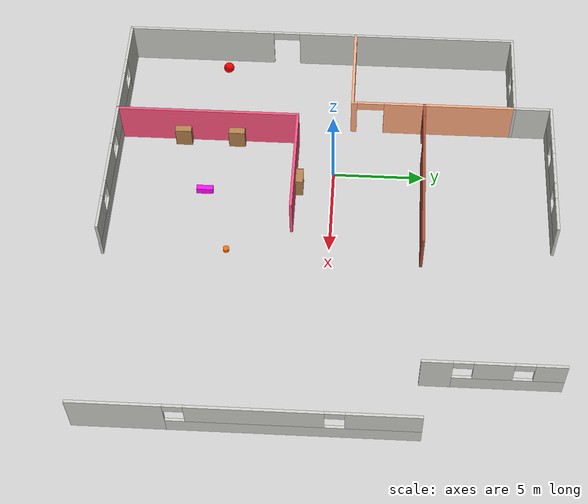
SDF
<sdf version="1.6">
 <world name="default">
  <model name="ground_plane">
   <static>1</static>
   <link name="link">
    <collision name="collision">
     <geometry><plane><normal>0 0 1</normal><size>100 100</size></plane></geometry>
     <surface><friction><ode><mu>100</mu><mu2>50</mu2></ode></friction></surface>
    </collision>
    <visual name="visual">
     <cast_shadows>0</cast_shadows>
     <geometry><plane><normal>0 0 1</normal><size>100 100</size></plane></geometry>
     <material>
      <script><uri>file://media/materials/scripts/gazebo.material</uri><name>Gazebo/Grey</name></script>
     </material>
    </visual>
   </link>
  </model>
  <model name="myWorld">
   <pose>3.77608 -0.0788 0 0 -0 0</pose>
   <link name="Wall_0">
    <pose>0 -12 0 0 -0 0</pose>
    <visual name="Wall_0_Visual_0">
     <pose>-10.7875 0 1.25 0 -0 0</pose>
     <geometry><box><size>2.575 0.15 2.5</size></box></geometry>
     <material>
      <script><uri>file://media/materials/scripts/gazebo.material</uri><name>Gazebo/CeilingTiled</name></script>
      <ambient>1 0.764706 0.305882 1</ambient>
     </material>
     <meta><layer>0</layer></meta>
    </visual>
    <collision name="Wall_0_Collision_0">
     <geometry><box><size>2.575 0.15 2.5</size></box></geometry>
     <pose>-10.7875 0 1.25 0 -0 0</pose>
    </collision>
    <visual name="Wall_0_Visual_1">
     <pose>-3.75 0 0.5 0 -0 0</pose>
     <geometry><box><size>11.575 0.15 1</size></box></geometry>
     <material>
      <script><uri>file://media/materials/scripts/gazebo.material</uri><name>Gazebo/CeilingTiled</name></script>
      <ambient>1 0.764706 0.305882 1</ambient>
     </material>
     <meta><layer>0</layer></meta>
    </visual>
    <collision name="Wall_0_Collision_1">
     <geometry><box><size>11.575 0.15 1</size></box></geometry>
     <pose>-3.75 0 0.5 0 -0 0</pose>
    </collision>
    <visual name="Wall_0_Visual_2">
     <pose>-6.5 0 1.75 0 -0 0</pose>
     <geometry><box><size>4 0.15 1.5</size></box></geometry>
     <material>
      <script><uri>file://media/materials/scripts/gazebo.material</uri><name>Gazebo/CeilingTiled</name></script>
      <ambient>1 0.764706 0.305882 1</ambient>
     </material>
     <meta><layer>0</layer></meta>
    </visual>
    <collision name="Wall_0_Collision_2">
     <geometry><box><size>4 0.15 1.5</size></box></geometry>
     <pose>-6.5 0 1.75 0 -0 0</pose>
    </collision>
    <visual name="Wall_0_Visual_3">
     <pose>-2.25 0 1.75 0 -0 0</pose>
     <geometry><box><size>2.5 0.15 1.5</size></box></geometry>
     <material>
      <script><uri>file://media/materials/scripts/gazebo.material</uri><name>Gazebo/CeilingTiled</name></script>
      <ambient>1 0.764706 0.305882 1</ambient>
     </material>
     <meta><layer>0</layer></meta>
    </visual>
    <collision name="Wall_0_Collision_3">
     <geometry><box><size>2.5 0.15 1.5</size></box></geometry>
     <pose>-2.25 0 1.75 0 -0 0</pose>
    </collision>
    <visual name="Wall_0_Visual_4">
     <pose>1 0 1.75 0 -0 0</pose>
     <geometry><box><size>2 0.15 1.5</size></box></geometry>
     <material>
      <script><uri>file://media/materials/scripts/gazebo.material</uri><name>Gazebo/CeilingTiled</name></script>
      <ambient>1 0.764706 0.305882 1</ambient>
     </material>
     <meta><layer>0</layer></meta>
    </visual>
    <collision name="Wall_0_Collision_4">
     <geometry><box><size>2 0.15 1.5</size></box></geometry>
     <pose>1 0 1.75 0 -0 0</pose>
    </collision>
    <visual name="Wall_0_Visual_7">
     <pose>-9 0 2.25 0 -0 0</pose>
     <geometry><box><size>1 0.15 0.5</size></box></geometry>
     <material>
      <script><uri>file://media/materials/scripts/gazebo.material</uri><name>Gazebo/CeilingTiled</name></script>
      <ambient>1 0.764706 0.305882 1</ambient>
     </material>
     <meta><layer>0</layer></meta>
    </visual>
    <collision name="Wall_0_Collision_7">
     <geometry><box><size>1 0.15 0.5</size></box></geometry>
     <pose>-9 0 2.25 0 -0 0</pose>
    </collision>
    <visual name="Wall_0_Visual_8">
     <pose>-4 0 2.25 0 -0 0</pose>
     <geometry><box><size>1 0.15 0.5</size></box></geometry>
     <material>
      <script><uri>file://media/materials/scripts/gazebo.material</uri><name>Gazebo/CeilingTiled</name></script>
      <ambient>1 0.764706 0.305882 1</ambient>
     </material>
     <meta><layer>0</layer></meta>
    </visual>
    <collision name="Wall_0_Collision_8">
     <geometry><box><size>1 0.15 0.5</size></box></geometry>
     <pose>-4 0 2.25 0 -0 0</pose>
    </collision>
    <visual name="Wall_0_Visual_9">
     <pose>-0.5 0 2.25 0 -0 0</pose>
     <geometry><box><size>1 0.15 0.5</size></box></geometry>
     <material>
      <script><uri>file://media/materials/scripts/gazebo.material</uri><name>Gazebo/CeilingTiled</name></script>
      <ambient>1 0.764706 0.305882 1</ambient>
     </material>
     <meta><layer>0</layer></meta>
    </visual>
    <collision name="Wall_0_Collision_9">
     <geometry><box><size>1 0.15 0.5</size></box></geometry>
     <pose>-0.5 0 2.25 0 -0 0</pose>
    </collision>
   </link>
   <link name="Wall_10">
    <collision name="Wall_10_Collision">
     <geometry><box><size>10.15 0.15 2.5</size></box></geometry>
     <pose>0 0 1.25 0 -0 0</pose>
    </collision>
    <visual name="Wall_10_Visual">
     <pose>0 0 1.25 0 -0 0</pose>
     <geometry><box><size>10.15 0.15 2.5</size></box></geometry>
     <material>
      <script><uri>file://media/materials/scripts/gazebo.material</uri><name>Gazebo/Grey</name></script>
      <ambient>1 0.333333 0.498039 1</ambient>
     </material>
     <meta><layer>0</layer></meta>
    </visual>
    <pose>-6 -7 0 0 -0 1.5708</pose>
   </link>
   <link name="Wall_14">
    <collision name="Wall_14_Collision">
     <geometry><box><size>6.15 0.15 2.5</size></box></geometry>
     <pose>1.1 0 1.25 0 -0 0</pose>
    </collision>
    <visual name="Wall_14_Visual">
     <pose>1.1 0 1.25 0 -0 0</pose>
     <geometry><box><size>6.15 0.15 2.5</size></box></geometry>
     <material>
      <script><uri>file://media/materials/scripts/gazebo.material</uri><name>Gazebo/Grey</name></script>
      <ambient>1 0.333333 0.498039 1</ambient>
     </material>
     <meta><layer>0</layer></meta>
    </visual>
    <pose>-4 -2 0 0 -0 0</pose>
   </link>
   <link name="Wall_2">
    <pose>12 -3.5 0 0 -0 1.5708</pose>
    <visual name="Wall_2_Visual_0">
     <pose>-6.2125 0 1.25 0 -0 0</pose>
     <geometry><box><size>4.7125 0.15 2.5</size></box></geometry>
     <material>
      <script><uri>file://media/materials/scripts/gazebo.material</uri><name>Gazebo/CeilingTiled</name></script>
      <ambient>1 0.764706 0.305882 1</ambient>
     </material>
     <meta><layer>0</layer></meta>
    </visual>
    <collision name="Wall_2_Collision_0">
     <geometry><box><size>4.7125 0.15 2.5</size></box></geometry>
     <pose>-6.2125 0 1.25 0 -0 0</pose>
    </collision>
    <visual name="Wall_2_Visual_1">
     <pose>2.35 0 0.5 0 -0 0</pose>
     <geometry><box><size>12.46 0.15 1</size></box></geometry>
     <material>
      <script><uri>file://media/materials/scripts/gazebo.material</uri><name>Gazebo/CeilingTiled</name></script>
      <ambient>1 0.764706 0.305882 1</ambient>
     </material>
     <meta><layer>0</layer></meta>
    </visual>
    <collision name="Wall_2_Collision_1">
     <geometry><box><size>12.46 0.15 1</size></box></geometry>
     <pose>2.35 0 0.5 0 -0 0</pose>
    </collision>
    <visual name="Wall_2_Visual_2">
     <pose>0.5 0 1.75 0 -0 0</pose>
     <geometry><box><size>6.75 0.15 1.5</size></box></geometry>
     <material>
      <script><uri>file://media/materials/scripts/gazebo.material</uri><name>Gazebo/CeilingTiled</name></script>
      <ambient>1 0.764706 0.305882 1</ambient>
     </material>
     <meta><layer>0</layer></meta>
    </visual>
    <collision name="Wall_2_Collision_2">
     <geometry><box><size>6.75 0.15 1.5</size></box></geometry>
     <pose>0.5 0 1.75 0 -0 0</pose>
    </collision>
    <visual name="Wall_2_Visual_3">
     <pose>6.7125 0 1.75 0 -0 0</pose>
     <geometry><box><size>3.725 0.15 1.5</size></box></geometry>
     <material>
      <script><uri>file://media/materials/scripts/gazebo.material</uri><name>Gazebo/CeilingTiled</name></script>
      <ambient>1 0.764706 0.305882 1</ambient>
     </material>
     <meta><layer>0</layer></meta>
    </visual>
    <collision name="Wall_2_Collision_3">
     <geometry><box><size>3.725 0.15 1.5</size></box></geometry>
     <pose>6.7125 0 1.75 0 -0 0</pose>
    </collision>
    <visual name="Wall_2_Visual_4">
     <pose>-3.375 0 2.25 0 -0 0</pose>
     <geometry><box><size>1 0.15 0.5</size></box></geometry>
     <material>
      <script><uri>file://media/materials/scripts/gazebo.material</uri><name>Gazebo/CeilingTiled</name></script>
      <ambient>1 0.764706 0.305882 1</ambient>
     </material>
     <meta><layer>0</layer></meta>
    </visual>
    <collision name="Wall_2_Collision_4">
     <geometry><box><size>1 0.15 0.5</size></box></geometry>
     <pose>-3.375 0 2.25 0 -0 0</pose>
    </collision>
    <visual name="Wall_2_Visual_5">
     <pose>4.375 0 2.25 0 -0 0</pose>
     <geometry><box><size>1 0.15 0.5</size></box></geometry>
     <material>
      <script><uri>file://media/materials/scripts/gazebo.material</uri><name>Gazebo/CeilingTiled</name></script>
      <ambient>1 0.764706 0.305882 1</ambient>
     </material>
     <meta><layer>0</layer></meta>
    </visual>
    <collision name="Wall_2_Collision_5">
     <geometry><box><size>1 0.15 0.5</size></box></geometry>
     <pose>4.375 0 2.25 0 -0 0</pose>
    </collision>
   </link>
   <link name="Wall_24">
    <collision name="Wall_24_Collision">
     <geometry><box><size>5.15 0.15 2.5</size></box></geometry>
     <pose>0 0 1.25 0 -0 0</pose>
    </collision>
    <visual name="Wall_24_Visual">
     <pose>0 0 1.25 0 -0 0</pose>
     <geometry><box><size>5.15 0.15 2.5</size></box></geometry>
     <material>
      <script><uri>file://media/materials/scripts/gazebo.material</uri><name>Gazebo/Grey</name></script>
      <ambient>1 0.666667 0.498039 1</ambient>
     </material>
     <meta><layer>0</layer></meta>
    </visual>
    <pose>-9.5 1 0 0 -0 0</pose>
   </link>
   <link name="Wall_25">
    <pose>-7 5.5 0 0 -0 1.5708</pose>
    <visual name="Wall_25_Visual_0">
     <pose>-4.4125 0 1.25 0 -0 0</pose>
     <geometry><box><size>0.325 0.15 2.5</size></box></geometry>
     <material>
      <script><uri>file://media/materials/scripts/gazebo.material</uri><name>Gazebo/Grey</name></script>
      <ambient>1 0.666667 0.498039 1</ambient>
     </material>
     <meta><layer>0</layer></meta>
    </visual>
    <collision name="Wall_25_Collision_0">
     <geometry><box><size>0.325 0.15 2.5</size></box></geometry>
     <pose>-4.4125 0 1.25 0 -0 0</pose>
    </collision>
    <visual name="Wall_25_Visual_1">
     <pose>0.9125 0 1.25 0 -0 0</pose>
     <geometry><box><size>7.325 0.15 2.5</size></box></geometry>
     <material>
      <script><uri>file://media/materials/scripts/gazebo.material</uri><name>Gazebo/Grey</name></script>
      <ambient>1 0.666667 0.498039 1</ambient>
     </material>
     <meta><layer>0</layer></meta>
    </visual>
    <collision name="Wall_25_Collision_1">
     <geometry><box><size>7.325 0.15 2.5</size></box></geometry>
     <pose>0.9125 0 1.25 0 -0 0</pose>
    </collision>
    <visual name="Wall_25_Visual_2">
     <pose>-3.5 0 2.25 0 -0 0</pose>
     <geometry><box><size>1.5 0.15 0.5</size></box></geometry>
     <material>
      <script><uri>file://media/materials/scripts/gazebo.material</uri><name>Gazebo/Grey</name></script>
      <ambient>1 0.666667 0.498039 1</ambient>
     </material>
     <meta><layer>0</layer></meta>
    </visual>
    <collision name="Wall_25_Collision_2">
     <geometry><box><size>1.5 0.15 0.5</size></box></geometry>
     <pose>-3.5 0 2.25 0 -0 0</pose>
    </collision>
   </link>
   <link name="Wall_27">
    <pose>1 5 0 0 -0 0</pose>
    <visual name="Wall_27_Visual_0">
     <pose>-7.6625 0 1.25 0 -0 0</pose>
     <geometry><box><size>0.825 0.15 2.5</size></box></geometry>
     <material>
      <script><uri>file://media/materials/scripts/gazebo.material</uri><name>Gazebo/Bricks</name></script>
      <ambient>1 0.5 0.498039 1</ambient>
     </material>
     <meta><layer>0</layer></meta>
    </visual>
    <collision name="Wall_27_Collision_0">
     <geometry><box><size>0.825 0.15 2.5</size></box></geometry>
     <pose>-7.6625 0 1.25 0 -0 0</pose>
    </collision>
    <visual name="Wall_27_Visual_1">
     <pose>-2.375 0 1.25 0 -0 0</pose>
     <geometry><box><size>6.875 0.15 2.5</size></box></geometry>
     <material>
      <script><uri>file://media/materials/scripts/gazebo.material</uri><name>Gazebo/Bricks</name></script>
      <ambient>1 0.5 0.498039 1</ambient>
     </material>
     <meta><layer>0</layer></meta>
    </visual>
    <collision name="Wall_27_Collision_1">
     <geometry><box><size>6.875 0.15 2.5</size></box></geometry>
     <pose>-2.375 0 1.25 0 -0 0</pose>
    </collision>
    <visual name="Wall_27_Visual_3">
     <pose>-6.5 0 2.25 0 -0 0</pose>
     <geometry><box><size>1.5 0.15 0.5</size></box></geometry>
     <material>
      <script><uri>file://media/materials/scripts/gazebo.material</uri><name>Gazebo/Bricks</name></script>
      <ambient>1 0.5 0.498039 1</ambient>
     </material>
     <meta><layer>0</layer></meta>
    </visual>
    <collision name="Wall_27_Collision_3">
     <geometry><box><size>1.5 0.15 0.5</size></box></geometry>
     <pose>-6.5 0 2.25 0 -0 0</pose>
    </collision>
   </link>
   <link name="Wall_4">
    <pose>9 8.5 0 0 -0 1.5708</pose>
    <visual name="Wall_4_Visual_0">
     <pose>-2.7875 0 1.25 0 -0 0</pose>
     <geometry><box><size>1.575 0.15 2.5</size></box></geometry>
     <material>
      <script><uri>file://media/materials/scripts/gazebo.material</uri><name>Gazebo/CeilingTiled</name></script>
      <ambient>1 0.764706 0.305882 1</ambient>
     </material>
     <meta><layer>0</layer></meta>
    </visual>
    <collision name="Wall_4_Collision_0">
     <geometry><box><size>1.575 0.15 2.5</size></box></geometry>
     <pose>-2.7875 0 1.25 0 -0 0</pose>
    </collision>
    <visual name="Wall_4_Visual_1">
     <pose>0.7875 0 0.5 0 -0 0</pose>
     <geometry><box><size>5.575 0.15 1</size></box></geometry>
     <material>
      <script><uri>file://media/materials/scripts/gazebo.material</uri><name>Gazebo/CeilingTiled</name></script>
      <ambient>1 0.764706 0.305882 1</ambient>
     </material>
     <meta><layer>0</layer></meta>
    </visual>
    <collision name="Wall_4_Collision_1">
     <geometry><box><size>5.575 0.15 1</size></box></geometry>
     <pose>0.7875 0 0.5 0 -0 0</pose>
    </collision>
    <visual name="Wall_4_Visual_2">
     <pose>0 0 1.75 0 -0 0</pose>
     <geometry><box><size>2 0.15 1.5</size></box></geometry>
     <material>
      <script><uri>file://media/materials/scripts/gazebo.material</uri><name>Gazebo/CeilingTiled</name></script>
      <ambient>1 0.764706 0.305882 1</ambient>
     </material>
     <meta><layer>0</layer></meta>
    </visual>
    <collision name="Wall_4_Collision_2">
     <geometry><box><size>2 0.15 1.5</size></box></geometry>
     <pose>0 0 1.75 0 -0 0</pose>
    </collision>
    <visual name="Wall_4_Visual_3">
     <pose>2.7875 0 1.75 0 -0 0</pose>
     <geometry><box><size>1.575 0.15 1.5</size></box></geometry>
     <material>
      <script><uri>file://media/materials/scripts/gazebo.material</uri><name>Gazebo/CeilingTiled</name></script>
      <ambient>1 0.764706 0.305882 1</ambient>
     </material>
     <meta><layer>0</layer></meta>
    </visual>
    <collision name="Wall_4_Collision_3">
     <geometry><box><size>1.575 0.15 1.5</size></box></geometry>
     <pose>2.7875 0 1.75 0 -0 0</pose>
    </collision>
    <visual name="Wall_4_Visual_4">
     <pose>-1.5 0 2.25 0 -0 0</pose>
     <geometry><box><size>1 0.15 0.5</size></box></geometry>
     <material>
      <script><uri>file://media/materials/scripts/gazebo.material</uri><name>Gazebo/CeilingTiled</name></script>
      <ambient>1 0.764706 0.305882 1</ambient>
     </material>
     <meta><layer>0</layer></meta>
    </visual>
    <collision name="Wall_4_Collision_4">
     <geometry><box><size>1 0.15 0.5</size></box></geometry>
     <pose>-1.5 0 2.25 0 -0 0</pose>
    </collision>
    <visual name="Wall_4_Visual_5">
     <pose>1.5 0 2.25 0 -0 0</pose>
     <geometry><box><size>1 0.15 0.5</size></box></geometry>
     <material>
      <script><uri>file://media/materials/scripts/gazebo.material</uri><name>Gazebo/CeilingTiled</name></script>
      <ambient>1 0.764706 0.305882 1</ambient>
     </material>
     <meta><layer>0</layer></meta>
    </visual>
    <collision name="Wall_4_Collision_5">
     <geometry><box><size>1 0.15 0.5</size></box></geometry>
     <pose>1.5 0 2.25 0 -0 0</pose>
    </collision>
   </link>
   <link name="Wall_5">
    <pose>1 12 0 0 -0 3.14159</pose>
    <visual name="Wall_5_Visual_1">
     <pose>4.0375 0 0.5 0 -0 0</pose>
     <geometry><box><size>8.075 0.15 1</size></box></geometry>
     <material>
      <script><uri>file://media/materials/scripts/gazebo.material</uri><name>Gazebo/CeilingTiled</name></script>
      <ambient>1 0.764706 0.305882 1</ambient>
     </material>
     <meta><layer>0</layer></meta>
    </visual>
    <collision name="Wall_5_Collision_1">
     <geometry><box><size>8.075 0.15 1</size></box></geometry>
     <pose>4.0375 0 0.5 0 -0 0</pose>
    </collision>
    <visual name="Wall_5_Visual_3">
     <pose>1 0 1.75 0 -0 0</pose>
     <geometry><box><size>2 0.15 1.5</size></box></geometry>
     <material>
      <script><uri>file://media/materials/scripts/gazebo.material</uri><name>Gazebo/CeilingTiled</name></script>
      <ambient>1 0.764706 0.305882 1</ambient>
     </material>
     <meta><layer>0</layer></meta>
    </visual>
    <collision name="Wall_5_Collision_3">
     <geometry><box><size>2 0.15 1.5</size></box></geometry>
     <pose>1 0 1.75 0 -0 0</pose>
    </collision>
    <visual name="Wall_5_Visual_4">
     <pose>4 0 1.75 0 -0 0</pose>
     <geometry><box><size>2 0.15 1.5</size></box></geometry>
     <material>
      <script><uri>file://media/materials/scripts/gazebo.material</uri><name>Gazebo/CeilingTiled</name></script>
      <ambient>1 0.764706 0.305882 1</ambient>
     </material>
     <meta><layer>0</layer></meta>
    </visual>
    <collision name="Wall_5_Collision_4">
     <geometry><box><size>2 0.15 1.5</size></box></geometry>
     <pose>4 0 1.75 0 -0 0</pose>
    </collision>
    <visual name="Wall_5_Visual_5">
     <pose>7.0375 0 1.75 0 -0 0</pose>
     <geometry><box><size>2.075 0.15 1.5</size></box></geometry>
     <material>
      <script><uri>file://media/materials/scripts/gazebo.material</uri><name>Gazebo/CeilingTiled</name></script>
      <ambient>1 0.764706 0.305882 1</ambient>
     </material>
     <meta><layer>0</layer></meta>
    </visual>
    <collision name="Wall_5_Collision_5">
     <geometry><box><size>2.075 0.15 1.5</size></box></geometry>
     <pose>7.0375 0 1.75 0 -0 0</pose>
    </collision>
    <visual name="Wall_5_Visual_8">
     <pose>2.5 0 2.25 0 -0 0</pose>
     <geometry><box><size>1 0.15 0.5</size></box></geometry>
     <material>
      <script><uri>file://media/materials/scripts/gazebo.material</uri><name>Gazebo/CeilingTiled</name></script>
      <ambient>1 0.764706 0.305882 1</ambient>
     </material>
     <meta><layer>0</layer></meta>
    </visual>
    <collision name="Wall_5_Collision_8">
     <geometry><box><size>1 0.15 0.5</size></box></geometry>
     <pose>2.5 0 2.25 0 -0 0</pose>
    </collision>
    <visual name="Wall_5_Visual_9">
     <pose>5.5 0 2.25 0 -0 0</pose>
     <geometry><box><size>1 0.15 0.5</size></box></geometry>
     <material>
      <script><uri>file://media/materials/scripts/gazebo.material</uri><name>Gazebo/CeilingTiled</name></script>
      <ambient>1 0.764706 0.305882 1</ambient>
     </material>
     <meta><layer>0</layer></meta>
    </visual>
    <collision name="Wall_5_Collision_9">
     <geometry><box><size>1 0.15 0.5</size></box></geometry>
     <pose>5.5 0 2.25 0 -0 0</pose>
    </collision>
   </link>
   <link name="Wall_6">
    <collision name="Wall_6_Collision">
     <geometry><box><size>2.15 0.15 2.5</size></box></geometry>
     <pose>0 0 1.25 0 -0 0</pose>
    </collision>
    <visual name="Wall_6_Visual">
     <pose>0 0 1.25 0 -0 0</pose>
     <geometry><box><size>2.15 0.15 2.5</size></box></geometry>
     <material>
      <script><uri>file://media/materials/scripts/gazebo.material</uri><name>Gazebo/CeilingTiled</name></script>
      <ambient>1 0.764706 0.305882 1</ambient>
     </material>
     <meta><layer>0</layer></meta>
    </visual>
    <pose>-7 11 0 0 0 -1.5708</pose>
   </link>
   <link name="Wall_7">
    <pose>-9.5 10 0 0 -0 3.14159</pose>
    <visual name="Wall_7_Visual_0">
     <pose>-1.5425 0 1.25 0 -0 0</pose>
     <geometry><box><size>2.065 0.15 2.5</size></box></geometry>
     <material>
      <script><uri>file://media/materials/scripts/gazebo.material</uri><name>Gazebo/CeilingTiled</name></script>
      <ambient>1 0.764706 0.305882 1</ambient>
     </material>
     <meta><layer>0</layer></meta>
    </visual>
    <collision name="Wall_7_Collision_0">
     <geometry><box><size>2.065 0.15 2.5</size></box></geometry>
     <pose>-1.5425 0 1.25 0 -0 0</pose>
    </collision>
    <visual name="Wall_7_Visual_1">
     <pose>1.0325 0 0.5 0 -0 0</pose>
     <geometry><box><size>3.085 0.15 1</size></box></geometry>
     <material>
      <script><uri>file://media/materials/scripts/gazebo.material</uri><name>Gazebo/CeilingTiled</name></script>
      <ambient>1 0.764706 0.305882 1</ambient>
     </material>
     <meta><layer>0</layer></meta>
    </visual>
    <collision name="Wall_7_Collision_1">
     <geometry><box><size>3.085 0.15 1</size></box></geometry>
     <pose>1.0325 0 0.5 0 -0 0</pose>
    </collision>
    <visual name="Wall_7_Visual_2">
     <pose>1.5325 0 1.75 0 -0 0</pose>
     <geometry><box><size>2.085 0.15 1.5</size></box></geometry>
     <material>
      <script><uri>file://media/materials/scripts/gazebo.material</uri><name>Gazebo/CeilingTiled</name></script>
      <ambient>1 0.764706 0.305882 1</ambient>
     </material>
     <meta><layer>0</layer></meta>
    </visual>
    <collision name="Wall_7_Collision_2">
     <geometry><box><size>2.085 0.15 1.5</size></box></geometry>
     <pose>1.5325 0 1.75 0 -0 0</pose>
    </collision>
    <visual name="Wall_7_Visual_3">
     <pose>-0.01 0 2.25 0 -0 0</pose>
     <geometry><box><size>1 0.15 0.5</size></box></geometry>
     <material>
      <script><uri>file://media/materials/scripts/gazebo.material</uri><name>Gazebo/CeilingTiled</name></script>
      <ambient>1 0.764706 0.305882 1</ambient>
     </material>
     <meta><layer>0</layer></meta>
    </visual>
    <collision name="Wall_7_Collision_3">
     <geometry><box><size>1 0.15 0.5</size></box></geometry>
     <pose>-0.01 0 2.25 0 -0 0</pose>
    </collision>
   </link>
   <link name="Wall_8">
    <pose>-12 -1 0 0 0 -1.5708</pose>
    <visual name="Wall_8_Visual_0">
     <pose>-4.9125 0 1.25 0 -0 0</pose>
     <geometry><box><size>12.325 0.15 2.5</size></box></geometry>
     <material>
      <script><uri>file://media/materials/scripts/gazebo.material</uri><name>Gazebo/CeilingTiled</name></script>
      <ambient>1 0.764706 0.305882 1</ambient>
     </material>
     <meta><layer>0</layer></meta>
    </visual>
    <collision name="Wall_8_Collision_0">
     <geometry><box><size>12.325 0.15 2.5</size></box></geometry>
     <pose>-4.9125 0 1.25 0 -0 0</pose>
    </collision>
    <visual name="Wall_8_Visual_1">
     <pose>6.9125 0 1.25 0 -0 0</pose>
     <geometry><box><size>8.325 0.15 2.5</size></box></geometry>
     <material>
      <script><uri>file://media/materials/scripts/gazebo.material</uri><name>Gazebo/CeilingTiled</name></script>
      <ambient>1 0.764706 0.305882 1</ambient>
     </material>
     <meta><layer>0</layer></meta>
    </visual>
    <collision name="Wall_8_Collision_1">
     <geometry><box><size>8.325 0.15 2.5</size></box></geometry>
     <pose>6.9125 0 1.25 0 -0 0</pose>
    </collision>
    <visual name="Wall_8_Visual_2">
     <pose>2 0 2.25 0 -0 0</pose>
     <geometry><box><size>1.5 0.15 0.5</size></box></geometry>
     <material>
      <script><uri>file://media/materials/scripts/gazebo.material</uri><name>Gazebo/CeilingTiled</name></script>
      <ambient>1 0.764706 0.305882 1</ambient>
     </material>
     <meta><layer>0</layer></meta>
    </visual>
    <collision name="Wall_8_Collision_2">
     <geometry><box><size>1.5 0.15 0.5</size></box></geometry>
     <pose>2 0 2.25 0 -0 0</pose>
    </collision>
   </link>
   <static>1</static>
  </model>
  <model name="bookshelf">
   <static>1</static>
   <link name="link">
    <inertial><mass>1</mass></inertial>
    <collision name="back">
     <pose>0 0.005 0.6 0 -0 0</pose>
     <geometry><box><size>0.9 0.01 1.2</size></box></geometry>
    </collision>
    <visual name="visual1">
     <pose>0 0.005 0.6 0 -0 0</pose>
     <geometry><box><size>0.9 0.01 1.2</size></box></geometry>
     <material>
      <script><uri>file://media/materials/scripts/gazebo.material</uri><name>Gazebo/Wood</name></script>
     </material>
    </visual>
    <collision name="left_side">
     <pose>0.45 -0.195 0.6 0 -0 0</pose>
     <geometry><box><size>0.02 0.4 1.2</size></box></geometry>
    </collision>
    <visual name="visual2">
     <pose>0.45 -0.195 0.6 0 -0 0</pose>
     <geometry><box><size>0.02 0.4 1.2</size></box></geometry>
     <material>
      <script><uri>file://media/materials/scripts/gazebo.material</uri><name>Gazebo/Wood</name></script>
     </material>
    </visual>
    <collision name="right_side">
     <pose>-0.45 -0.195 0.6 0 -0 0</pose>
     <geometry><box><size>0.02 0.4 1.2</size></box></geometry>
    </collision>
    <visual name="visual3">
     <pose>-0.45 -0.195 0.6 0 -0 0</pose>
     <geometry><box><size>0.02 0.4 1.2</size></box></geometry>
     <material>
      <script><uri>file://media/materials/scripts/gazebo.material</uri><name>Gazebo/Wood</name></script>
     </material>
    </visual>
    <collision name="bottom">
     <pose>0 -0.195 0.03 0 -0 0</pose>
     <geometry><box><size>0.88 0.4 0.06</size></box></geometry>
    </collision>
    <visual name="visual4">
     <pose>0 -0.195 0.03 0 -0 0</pose>
     <geometry><box><size>0.88 0.4 0.06</size></box></geometry>
     <material>
      <script><uri>file://media/materials/scripts/gazebo.material</uri><name>Gazebo/Wood</name></script>
     </material>
    </visual>
    <collision name="top">
     <pose>0 -0.195 1.19 0 -0 0</pose>
     <geometry><box><size>0.88 0.4 0.02</size></box></geometry>
    </collision>
    <visual name="visual5">
     <pose>0 -0.195 1.19 0 -0 0</pose>
     <geometry><box><size>0.88 0.4 0.02</size></box></geometry>
     <material>
      <script><uri>file://media/materials/scripts/gazebo.material</uri><name>Gazebo/Wood</name></script>
     </material>
    </visual>
    <collision name="low_shelf">
     <pose>0 -0.195 0.43 0 -0 0</pose>
     <geometry><box><size>0.88 0.4 0.02</size></box></geometry>
    </collision>
    <visual name="visual6">
     <pose>0 -0.195 0.43 0 -0 0</pose>
     <geometry><box><size>0.88 0.4 0.02</size></box></geometry>
     <material>
      <script><uri>file://media/materials/scripts/gazebo.material</uri><name>Gazebo/Wood</name></script>
     </material>
    </visual>
    <collision name="high_shelf">
     <pose>0 -0.195 0.8 0 -0 0</pose>
     <geometry><box><size>0.88 0.4 0.02</size></box></geometry>
    </collision>
    <visual name="visual7">
     <pose>0 -0.195 0.8 0 -0 0</pose>
     <geometry><box><size>0.88 0.4 0.02</size></box></geometry>
     <material>
      <script><uri>file://media/materials/scripts/gazebo.material</uri><name>Gazebo/Wood</name></script>
     </material>
    </visual>
   </link>
   <pose>-1.75 -5.5 0 0 0 -1.5708</pose>
  </model>
  <model name="bookshelf_1">
   <static>1</static>
   <link name="link">
    <inertial><mass>1</mass></inertial>
    <collision name="back">
     <pose>0 0.005 0.6 0 -0 0</pose>
     <geometry><box><size>0.9 0.01 1.2</size></box></geometry>
    </collision>
    <visual name="visual1">
     <pose>0 0.005 0.6 0 -0 0</pose>
     <geometry><box><size>0.9 0.01 1.2</size></box></geometry>
     <material>
      <script><uri>file://media/materials/scripts/gazebo.material</uri><name>Gazebo/Wood</name></script>
     </material>
    </visual>
    <collision name="left_side">
     <pose>0.45 -0.195 0.6 0 -0 0</pose>
     <geometry><box><size>0.02 0.4 1.2</size></box></geometry>
    </collision>
    <visual name="visual2">
     <pose>0.45 -0.195 0.6 0 -0 0</pose>
     <geometry><box><size>0.02 0.4 1.2</size></box></geometry>
     <material>
      <script><uri>file://media/materials/scripts/gazebo.material</uri><name>Gazebo/Wood</name></script>
     </material>
    </visual>
    <collision name="right_side">
     <pose>-0.45 -0.195 0.6 0 -0 0</pose>
     <geometry><box><size>0.02 0.4 1.2</size></box></geometry>
    </collision>
    <visual name="visual3">
     <pose>-0.45 -0.195 0.6 0 -0 0</pose>
     <geometry><box><size>0.02 0.4 1.2</size></box></geometry>
     <material>
      <script><uri>file://media/materials/scripts/gazebo.material</uri><name>Gazebo/Wood</name></script>
     </material>
    </visual>
    <collision name="bottom">
     <pose>0 -0.195 0.03 0 -0 0</pose>
     <geometry><box><size>0.88 0.4 0.06</size></box></geometry>
    </collision>
    <visual name="visual4">
     <pose>0 -0.195 0.03 0 -0 0</pose>
     <geometry><box><size>0.88 0.4 0.06</size></box></geometry>
     <material>
      <script><uri>file://media/materials/scripts/gazebo.material</uri><name>Gazebo/Wood</name></script>
     </material>
    </visual>
    <collision name="top">
     <pose>0 -0.195 1.19 0 -0 0</pose>
     <geometry><box><size>0.88 0.4 0.02</size></box></geometry>
    </collision>
    <visual name="visual5">
     <pose>0 -0.195 1.19 0 -0 0</pose>
     <geometry><box><size>0.88 0.4 0.02</size></box></geometry>
     <material>
      <script><uri>file://media/materials/scripts/gazebo.material</uri><name>Gazebo/Wood</name></script>
     </material>
    </visual>
    <collision name="low_shelf">
     <pose>0 -0.195 0.43 0 -0 0</pose>
     <geometry><box><size>0.88 0.4 0.02</size></box></geometry>
    </collision>
    <visual name="visual6">
     <pose>0 -0.195 0.43 0 -0 0</pose>
     <geometry><box><size>0.88 0.4 0.02</size></box></geometry>
     <material>
      <script><uri>file://media/materials/scripts/gazebo.material</uri><name>Gazebo/Wood</name></script>
     </material>
    </visual>
    <collision name="high_shelf">
     <pose>0 -0.195 0.8 0 -0 0</pose>
     <geometry><box><size>0.88 0.4 0.02</size></box></geometry>
    </collision>
    <visual name="visual7">
     <pose>0 -0.195 0.8 0 -0 0</pose>
     <geometry><box><size>0.88 0.4 0.02</size></box></geometry>
     <material>
      <script><uri>file://media/materials/scripts/gazebo.material</uri><name>Gazebo/Wood</name></script>
     </material>
    </visual>
   </link>
   <pose>-1.75 -8.5 0 0 0 -1.5708</pose>
  </model>
  <model name="cylinder_or_0">
   <link name="link_0">
    <inertial>
     <mass>1</mass>
     <inertia><ixx>0.145833</ixx><ixy>0</ixy><ixz>0</ixz><iyy>0.145833</iyy><iyz>0</iyz><izz>0.125</izz></inertia>
    </inertial>
    <visual name="visual">
     <geometry><cylinder><radius>0.166667</radius><length>0.333333</length></cylinder></geometry>
     <material>
      <lighting>1</lighting>
      <script><uri>file://media/materials/scripts/gazebo.material</uri><name>Gazebo/Grey</name></script>
      <ambient>1 0.416 0 1</ambient>
      <diffuse>1 0.416 0 1</diffuse>
      <specular>0 0 0 1</specular>
      <emissive>0 0 0 1</emissive>
      <shader type="vertex"><normal_map>__default__</normal_map></shader>
     </material>
    </visual>
    <collision name="collision">
     <geometry><cylinder><radius>0.166667</radius><length>0.333333</length></cylinder></geometry>
     <surface>
      <friction>
       <ode><mu>1</mu><mu2>1</mu2><fdir1>0 0 0</fdir1><slip1>0</slip1><slip2>0</slip2></ode>
       <torsional>
        <coefficient>1</coefficient>
        <patch_radius>0</patch_radius>
        <surface_radius>0</surface_radius>
        <use_patch_radius>1</use_patch_radius>
        <ode><slip>0</slip></ode>
       </torsional>
      </friction>
      <bounce><restitution_coefficient>0</restitution_coefficient><threshold>1e+06</threshold></bounce>
      <contact>
       <collide_without_contact>0</collide_without_contact>
       <collide_without_contact_bitmask>1</collide_without_contact_bitmask>
       <collide_bitmask>1</collide_bitmask>
       <ode>
        <soft_cfm>0</soft_cfm>
        <soft_erp>0.2</soft_erp>
        <kp>1e+13</kp>
        <kd>1</kd>
        <max_vel>0.01</max_vel>
        <min_depth>0</min_depth>
       </ode>
       <bullet>
        <split_impulse>1</split_impulse>
        <split_impulse_penetration_threshold>-0.01</split_impulse_penetration_threshold>
        <soft_cfm>0</soft_cfm>
        <soft_erp>0.2</soft_erp>
        <kp>1e+13</kp>
        <kd>1</kd>
       </bullet>
      </contact>
     </surface>
    </collision>
   </link>
   <static>1</static>
   <pose>5.25 -5.5 0 0 -0 0</pose>
  </model>
  <model name="sphere_r">
   <link name="link_1">
    <pose>0 0 0.1 0 -0 0</pose>
    <inertial>
     <mass>1</mass>
     <inertia><ixx>0.1</ixx><ixy>0</ixy><ixz>0</ixz><iyy>0.1</iyy><iyz>0</iyz><izz>0.1</izz></inertia>
    </inertial>
    <visual name="visual">
     <geometry><sphere><radius>0.3</radius></sphere></geometry>
     <material>
      <lighting>1</lighting>
      <script><uri>file://media/materials/scripts/gazebo.material</uri><name>Gazebo/Grey</name></script>
      <ambient>1 0 0 1</ambient>
      <diffuse>1 0 0 1</diffuse>
      <specular>0 0 0 1</specular>
      <emissive>0 0 0 1</emissive>
      <shader type="vertex"><normal_map>__default__</normal_map></shader>
     </material>
    </visual>
    <collision name="collision">
     <geometry><sphere><radius>0.3</radius></sphere></geometry>
     <surface>
      <friction>
       <ode><mu>1</mu><mu2>1</mu2><fdir1>0 0 0</fdir1><slip1>0</slip1><slip2>0</slip2></ode>
       <torsional>
        <coefficient>1</coefficient>
        <patch_radius>0</patch_radius>
        <surface_radius>0</surface_radius>
        <use_patch_radius>1</use_patch_radius>
        <ode><slip>0</slip></ode>
       </torsional>
      </friction>
      <bounce><restitution_coefficient>0</restitution_coefficient><threshold>1e+06</threshold></bounce>
      <contact>
       <collide_without_contact>0</collide_without_contact>
       <collide_without_contact_bitmask>1</collide_without_contact_bitmask>
       <collide_bitmask>1</collide_bitmask>
       <ode>
        <soft_cfm>0</soft_cfm>
        <soft_erp>0.2</soft_erp>
        <kp>1e+13</kp>
        <kd>1</kd>
        <max_vel>0.01</max_vel>
        <min_depth>0</min_depth>
       </ode>
       <bullet>
        <split_impulse>1</split_impulse>
        <split_impulse_penetration_threshold>-0.01</split_impulse_penetration_threshold>
        <soft_cfm>0</soft_cfm>
        <soft_erp>0.2</soft_erp>
        <kp>1e+13</kp>
        <kd>1</kd>
       </bullet>
      </contact>
     </surface>
    </collision>
   </link>
   <static>1</static>
   <pose>-7.5 -6.5 0 0 -0 0</pose>
  </model>
  <model name="Box_36x15W_1">
   <link name="Wall">
    <pose>0 0 0.1985 0 -0 0</pose>
    <inertial>
     <mass>5</mass>
     <inertia><ixx>0.1022</ixx><iyy>0.4107</iyy><izz>0.3815</izz><ixy>0</ixy><ixz>0</ixz><iyz>0</iyz></inertia>
    </inertial>
    <collision name="Wall_Collision"><geometry><box><size>0.91 0.296 0.397</size></box></geometry></collision>
    <visual name="Wall_Visual">
     <geometry><box><size>0.91 0.296 0.397</size></box></geometry>
     <material>
      <script><uri>file://media/materials/scripts/gazebo.material</uri><name>Gazebo/Grey</name></script>
      <ambient>0.99 0.06 0.94 1</ambient>
     </material>
    </visual>
   </link>
   <static>1</static>
   <pose>1.46695 -7.00922 0 0 0 -1.57098</pose>
  </model>
  <model name="bookshelf_2">
   <static>1</static>
   <link name="link">
    <inertial><mass>1</mass></inertial>
    <collision name="back">
     <pose>0 0.005 0.6 0 -0 0</pose>
     <geometry><box><size>0.9 0.01 1.2</size></box></geometry>
    </collision>
    <visual name="visual1">
     <pose>0 0.005 0.6 0 -0 0</pose>
     <geometry><box><size>0.9 0.01 1.2</size></box></geometry>
     <material>
      <script><uri>file://media/materials/scripts/gazebo.material</uri><name>Gazebo/Wood</name></script>
     </material>
    </visual>
    <collision name="left_side">
     <pose>0.45 -0.195 0.6 0 -0 0</pose>
     <geometry><box><size>0.02 0.4 1.2</size></box></geometry>
    </collision>
    <visual name="visual2">
     <pose>0.45 -0.195 0.6 0 -0 0</pose>
     <geometry><box><size>0.02 0.4 1.2</size></box></geometry>
     <material>
      <script><uri>file://media/materials/scripts/gazebo.material</uri><name>Gazebo/Wood</name></script>
     </material>
    </visual>
    <collision name="right_side">
     <pose>-0.45 -0.195 0.6 0 -0 0</pose>
     <geometry><box><size>0.02 0.4 1.2</size></box></geometry>
    </collision>
    <visual name="visual3">
     <pose>-0.45 -0.195 0.6 0 -0 0</pose>
     <geometry><box><size>0.02 0.4 1.2</size></box></geometry>
     <material>
      <script><uri>file://media/materials/scripts/gazebo.material</uri><name>Gazebo/Wood</name></script>
     </material>
    </visual>
    <collision name="bottom">
     <pose>0 -0.195 0.03 0 -0 0</pose>
     <geometry><box><size>0.88 0.4 0.06</size></box></geometry>
    </collision>
    <visual name="visual4">
     <pose>0 -0.195 0.03 0 -0 0</pose>
     <geometry><box><size>0.88 0.4 0.06</size></box></geometry>
     <material>
      <script><uri>file://media/materials/scripts/gazebo.material</uri><name>Gazebo/Wood</name></script>
     </material>
    </visual>
    <collision name="top">
     <pose>0 -0.195 1.19 0 -0 0</pose>
     <geometry><box><size>0.88 0.4 0.02</size></box></geometry>
    </collision>
    <visual name="visual5">
     <pose>0 -0.195 1.19 0 -0 0</pose>
     <geometry><box><size>0.88 0.4 0.02</size></box></geometry>
     <material>
      <script><uri>file://media/materials/scripts/gazebo.material</uri><name>Gazebo/Wood</name></script>
     </material>
    </visual>
    <collision name="low_shelf">
     <pose>0 -0.195 0.43 0 -0 0</pose>
     <geometry><box><size>0.88 0.4 0.02</size></box></geometry>
    </collision>
    <visual name="visual6">
     <pose>0 -0.195 0.43 0 -0 0</pose>
     <geometry><box><size>0.88 0.4 0.02</size></box></geometry>
     <material>
      <script><uri>file://media/materials/scripts/gazebo.material</uri><name>Gazebo/Wood</name></script>
     </material>
    </visual>
    <collision name="high_shelf">
     <pose>0 -0.195 0.8 0 -0 0</pose>
     <geometry><box><size>0.88 0.4 0.02</size></box></geometry>
    </collision>
    <visual name="visual7">
     <pose>0 -0.195 0.8 0 -0 0</pose>
     <geometry><box><size>0.88 0.4 0.02</size></box></geometry>
     <material>
      <script><uri>file://media/materials/scripts/gazebo.material</uri><name>Gazebo/Wood</name></script>
     </material>
    </visual>
   </link>
   <pose>1 -2 0 0 -0 3.14</pose>
  </model>
  <model name="cylinder_vb">
   <link name="link_0">
    <inertial>
     <mass>1</mass>
     <inertia><ixx>0.145833</ixx><ixy>0</ixy><ixz>0</ixz><iyy>0.145833</iyy><iyz>0</iyz><izz>0.125</izz></inertia>
    </inertial>
    <visual name="visual">
     <geometry><cylinder><radius>0.166667</radius><length>0.333333</length></cylinder></geometry>
     <material>
      <lighting>1</lighting>
      <script><uri>file://media/materials/scripts/gazebo.material</uri><name>Gazebo/Grey</name></script>
      <ambient>0.549 0 1 1</ambient>
      <diffuse>0.549 0 1 1</diffuse>
      <specular>0 0 0 1</specular>
      <emissive>0 0 0 1</emissive>
      <shader type="vertex"><normal_map>__default__</normal_map></shader>
     </material>
    </visual>
    <collision name="collision">
     <geometry><cylinder><radius>0.166667</radius><length>0.333333</length></cylinder></geometry>
     <surface>
      <friction>
       <ode><mu>1</mu><mu2>1</mu2><fdir1>0 0 0</fdir1><slip1>0</slip1><slip2>0</slip2></ode>
       <torsional>
        <coefficient>1</coefficient>
        <patch_radius>0</patch_radius>
        <surface_radius>0</surface_radius>
        <use_patch_radius>1</use_patch_radius>
        <ode><slip>0</slip></ode>
       </torsional>
      </friction>
      <bounce><restitution_coefficient>0</restitution_coefficient><threshold>1e+06</threshold></bounce>
      <contact>
       <collide_without_contact>0</collide_without_contact>
       <collide_without_contact_bitmask>1</collide_without_contact_bitmask>
       <collide_bitmask>1</collide_bitmask>
       <ode>
        <soft_cfm>0</soft_cfm>
        <soft_erp>0.2</soft_erp>
        <kp>1e+13</kp>
        <kd>1</kd>
        <max_vel>0.01</max_vel>
        <min_depth>0</min_depth>
       </ode>
       <bullet>
        <split_impulse>1</split_impulse>
        <split_impulse_penetration_threshold>-0.01</split_impulse_penetration_threshold>
        <soft_cfm>0</soft_cfm>
        <soft_erp>0.2</soft_erp>
        <kp>1e+13</kp>
        <kd>1</kd>
       </bullet>
      </contact>
     </surface>
    </collision>
   </link>
   <static>1</static>
   <pose>-2.6 -8 0 0 -0 0</pose>
  </model>
 </world>
</sdf>
